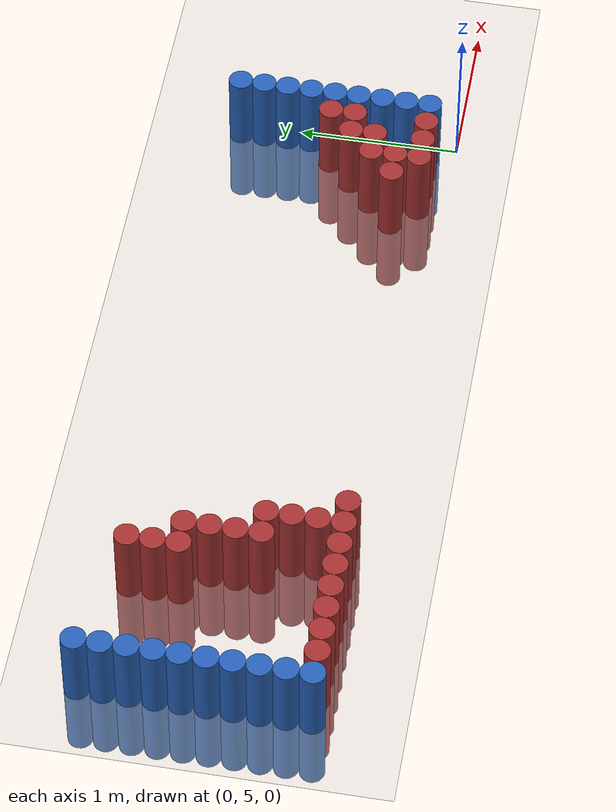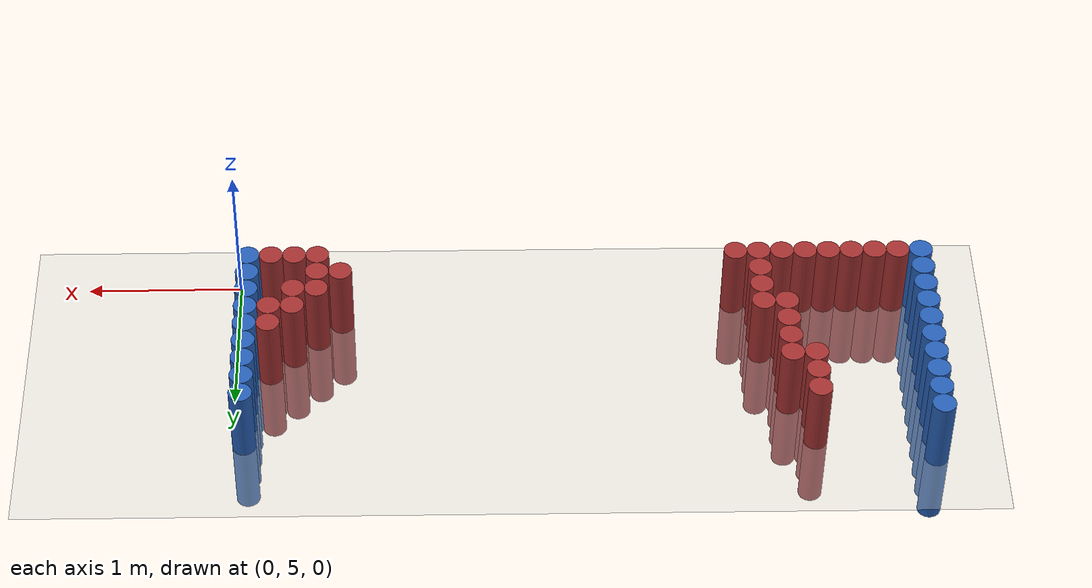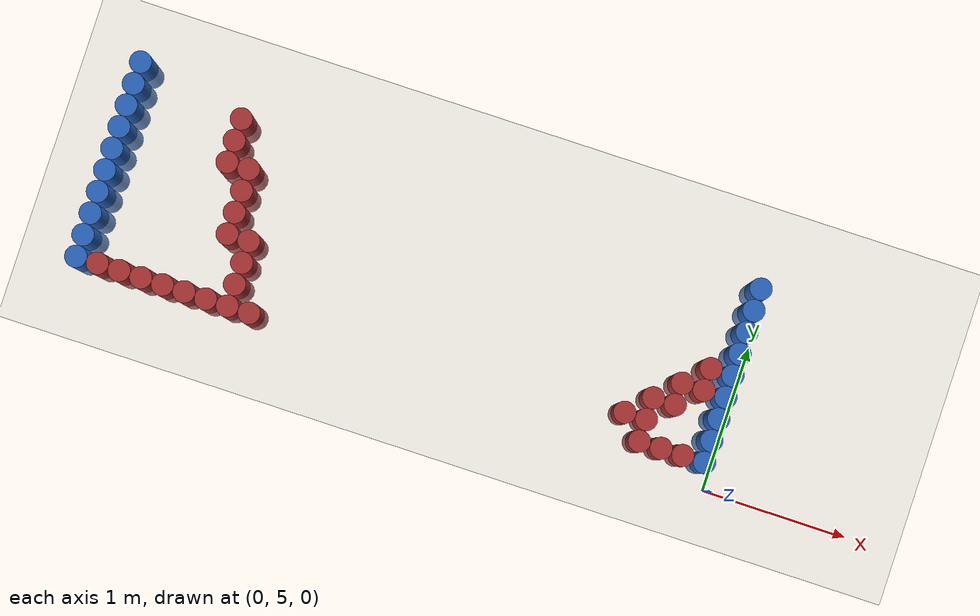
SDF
<sdf version="1.6">
 <world name="default">
  <model name="ground_plane">
   <static>1</static>
   <link name="link">
    <collision name="collision">
     <geometry><plane><normal>0 0 1</normal><size>100 100</size></plane></geometry>
     <surface><friction><ode><mu>100</mu><mu2>50</mu2></ode></friction></surface>
    </collision>
    <visual name="visual">
     <cast_shadows>0</cast_shadows>
     <geometry><plane><normal>0 0 1</normal><size>100 100</size></plane></geometry>
     <material>
      <script><uri>file://media/materials/scripts/gazebo.material</uri><name>Gazebo/Grey</name></script>
     </material>
    </visual>
   </link>
  </model>
  <model name="unit_cylinder_96">
   <static>1</static>
   <pose>-4.425000 5.175000 0.000000 0.000000 0.000000 0.000000</pose>
   <link name="link">
    <inertial>
     <mass>1</mass>
     <inertia><ixx>0.145833</ixx><ixy>0</ixy><ixz>0</ixz><iyy>0.145833</iyy><iyz>0</iyz><izz>0.125</izz></inertia>
    </inertial>
    <collision name="collision">
     <geometry><cylinder><radius>0.075000</radius><length>1</length></cylinder></geometry>
    </collision>
    <visual name="visual">
     <geometry><cylinder><radius>0.075000</radius><length>1</length></cylinder></geometry>
     <material>
      <ambient>0.152000 0.379000 0.720000 1</ambient>
      <diffuse>0.152000 0.379000 0.720000 1</diffuse>
     </material>
     <material>
      <script><name>Gazebo/Grey</name><uri>file://media/materials/scripts/gazebo.material</uri></script>
     </material>
    </visual>
   </link>
  </model>
  <model name="unit_cylinder_97">
   <static>1</static>
   <pose>-4.425000 5.325000 0.000000 0.000000 0.000000 0.000000</pose>
   <link name="link">
    <inertial>
     <mass>1</mass>
     <inertia><ixx>0.145833</ixx><ixy>0</ixy><ixz>0</ixz><iyy>0.145833</iyy><iyz>0</iyz><izz>0.125</izz></inertia>
    </inertial>
    <collision name="collision">
     <geometry><cylinder><radius>0.075000</radius><length>1</length></cylinder></geometry>
    </collision>
    <visual name="visual">
     <geometry><cylinder><radius>0.075000</radius><length>1</length></cylinder></geometry>
     <material>
      <ambient>0.152000 0.379000 0.720000 1</ambient>
      <diffuse>0.152000 0.379000 0.720000 1</diffuse>
     </material>
     <material>
      <script><name>Gazebo/Grey</name><uri>file://media/materials/scripts/gazebo.material</uri></script>
     </material>
    </visual>
   </link>
  </model>
  <model name="unit_cylinder_98">
   <static>1</static>
   <pose>-4.425000 5.475000 0.000000 0.000000 0.000000 0.000000</pose>
   <link name="link">
    <inertial>
     <mass>1</mass>
     <inertia><ixx>0.145833</ixx><ixy>0</ixy><ixz>0</ixz><iyy>0.145833</iyy><iyz>0</iyz><izz>0.125</izz></inertia>
    </inertial>
    <collision name="collision">
     <geometry><cylinder><radius>0.075000</radius><length>1</length></cylinder></geometry>
    </collision>
    <visual name="visual">
     <geometry><cylinder><radius>0.075000</radius><length>1</length></cylinder></geometry>
     <material>
      <ambient>0.152000 0.379000 0.720000 1</ambient>
      <diffuse>0.152000 0.379000 0.720000 1</diffuse>
     </material>
     <material>
      <script><name>Gazebo/Grey</name><uri>file://media/materials/scripts/gazebo.material</uri></script>
     </material>
    </visual>
   </link>
  </model>
  <model name="unit_cylinder_99">
   <static>1</static>
   <pose>-4.425000 5.625000 0.000000 0.000000 0.000000 0.000000</pose>
   <link name="link">
    <inertial>
     <mass>1</mass>
     <inertia><ixx>0.145833</ixx><ixy>0</ixy><ixz>0</ixz><iyy>0.145833</iyy><iyz>0</iyz><izz>0.125</izz></inertia>
    </inertial>
    <collision name="collision">
     <geometry><cylinder><radius>0.075000</radius><length>1</length></cylinder></geometry>
    </collision>
    <visual name="visual">
     <geometry><cylinder><radius>0.075000</radius><length>1</length></cylinder></geometry>
     <material>
      <ambient>0.152000 0.379000 0.720000 1</ambient>
      <diffuse>0.152000 0.379000 0.720000 1</diffuse>
     </material>
     <material>
      <script><name>Gazebo/Grey</name><uri>file://media/materials/scripts/gazebo.material</uri></script>
     </material>
    </visual>
   </link>
  </model>
  <model name="unit_cylinder_100">
   <static>1</static>
   <pose>-4.425000 5.775000 0.000000 0.000000 0.000000 0.000000</pose>
   <link name="link">
    <inertial>
     <mass>1</mass>
     <inertia><ixx>0.145833</ixx><ixy>0</ixy><ixz>0</ixz><iyy>0.145833</iyy><iyz>0</iyz><izz>0.125</izz></inertia>
    </inertial>
    <collision name="collision">
     <geometry><cylinder><radius>0.075000</radius><length>1</length></cylinder></geometry>
    </collision>
    <visual name="visual">
     <geometry><cylinder><radius>0.075000</radius><length>1</length></cylinder></geometry>
     <material>
      <ambient>0.152000 0.379000 0.720000 1</ambient>
      <diffuse>0.152000 0.379000 0.720000 1</diffuse>
     </material>
     <material>
      <script><name>Gazebo/Grey</name><uri>file://media/materials/scripts/gazebo.material</uri></script>
     </material>
    </visual>
   </link>
  </model>
  <model name="unit_cylinder_101">
   <static>1</static>
   <pose>-4.425000 5.925000 0.000000 0.000000 0.000000 0.000000</pose>
   <link name="link">
    <inertial>
     <mass>1</mass>
     <inertia><ixx>0.145833</ixx><ixy>0</ixy><ixz>0</ixz><iyy>0.145833</iyy><iyz>0</iyz><izz>0.125</izz></inertia>
    </inertial>
    <collision name="collision">
     <geometry><cylinder><radius>0.075000</radius><length>1</length></cylinder></geometry>
    </collision>
    <visual name="visual">
     <geometry><cylinder><radius>0.075000</radius><length>1</length></cylinder></geometry>
     <material>
      <ambient>0.152000 0.379000 0.720000 1</ambient>
      <diffuse>0.152000 0.379000 0.720000 1</diffuse>
     </material>
     <material>
      <script><name>Gazebo/Grey</name><uri>file://media/materials/scripts/gazebo.material</uri></script>
     </material>
    </visual>
   </link>
  </model>
  <model name="unit_cylinder_102">
   <static>1</static>
   <pose>-4.425000 6.075000 0.000000 0.000000 0.000000 0.000000</pose>
   <link name="link">
    <inertial>
     <mass>1</mass>
     <inertia><ixx>0.145833</ixx><ixy>0</ixy><ixz>0</ixz><iyy>0.145833</iyy><iyz>0</iyz><izz>0.125</izz></inertia>
    </inertial>
    <collision name="collision">
     <geometry><cylinder><radius>0.075000</radius><length>1</length></cylinder></geometry>
    </collision>
    <visual name="visual">
     <geometry><cylinder><radius>0.075000</radius><length>1</length></cylinder></geometry>
     <material>
      <ambient>0.152000 0.379000 0.720000 1</ambient>
      <diffuse>0.152000 0.379000 0.720000 1</diffuse>
     </material>
     <material>
      <script><name>Gazebo/Grey</name><uri>file://media/materials/scripts/gazebo.material</uri></script>
     </material>
    </visual>
   </link>
  </model>
  <model name="unit_cylinder_103">
   <static>1</static>
   <pose>-4.425000 6.225000 0.000000 0.000000 0.000000 0.000000</pose>
   <link name="link">
    <inertial>
     <mass>1</mass>
     <inertia><ixx>0.145833</ixx><ixy>0</ixy><ixz>0</ixz><iyy>0.145833</iyy><iyz>0</iyz><izz>0.125</izz></inertia>
    </inertial>
    <collision name="collision">
     <geometry><cylinder><radius>0.075000</radius><length>1</length></cylinder></geometry>
    </collision>
    <visual name="visual">
     <geometry><cylinder><radius>0.075000</radius><length>1</length></cylinder></geometry>
     <material>
      <ambient>0.152000 0.379000 0.720000 1</ambient>
      <diffuse>0.152000 0.379000 0.720000 1</diffuse>
     </material>
     <material>
      <script><name>Gazebo/Grey</name><uri>file://media/materials/scripts/gazebo.material</uri></script>
     </material>
    </visual>
   </link>
  </model>
  <model name="unit_cylinder_104">
   <static>1</static>
   <pose>-4.425000 6.375000 0.000000 0.000000 0.000000 0.000000</pose>
   <link name="link">
    <inertial>
     <mass>1</mass>
     <inertia><ixx>0.145833</ixx><ixy>0</ixy><ixz>0</ixz><iyy>0.145833</iyy><iyz>0</iyz><izz>0.125</izz></inertia>
    </inertial>
    <collision name="collision">
     <geometry><cylinder><radius>0.075000</radius><length>1</length></cylinder></geometry>
    </collision>
    <visual name="visual">
     <geometry><cylinder><radius>0.075000</radius><length>1</length></cylinder></geometry>
     <material>
      <ambient>0.152000 0.379000 0.720000 1</ambient>
      <diffuse>0.152000 0.379000 0.720000 1</diffuse>
     </material>
     <material>
      <script><name>Gazebo/Grey</name><uri>file://media/materials/scripts/gazebo.material</uri></script>
     </material>
    </visual>
   </link>
  </model>
  <model name="unit_cylinder_105">
   <static>1</static>
   <pose>-4.425000 6.525000 0.000000 0.000000 0.000000 0.000000</pose>
   <link name="link">
    <inertial>
     <mass>1</mass>
     <inertia><ixx>0.145833</ixx><ixy>0</ixy><ixz>0</ixz><iyy>0.145833</iyy><iyz>0</iyz><izz>0.125</izz></inertia>
    </inertial>
    <collision name="collision">
     <geometry><cylinder><radius>0.075000</radius><length>1</length></cylinder></geometry>
    </collision>
    <visual name="visual">
     <geometry><cylinder><radius>0.075000</radius><length>1</length></cylinder></geometry>
     <material>
      <ambient>0.152000 0.379000 0.720000 1</ambient>
      <diffuse>0.152000 0.379000 0.720000 1</diffuse>
     </material>
     <material>
      <script><name>Gazebo/Grey</name><uri>file://media/materials/scripts/gazebo.material</uri></script>
     </material>
    </visual>
   </link>
  </model>
  <model name="unit_cylinder_126">
   <static>1</static>
   <pose>-4.275000 5.175000 0.000000 0.000000 0.000000 0.000000</pose>
   <link name="link">
    <inertial>
     <mass>1</mass>
     <inertia><ixx>0.145833</ixx><ixy>0</ixy><ixz>0</ixz><iyy>0.145833</iyy><iyz>0</iyz><izz>0.125</izz></inertia>
    </inertial>
    <collision name="collision">
     <geometry><cylinder><radius>0.075000</radius><length>1</length></cylinder></geometry>
    </collision>
    <visual name="visual">
     <geometry><cylinder><radius>0.075000</radius><length>1</length></cylinder></geometry>
     <material>
      <ambient>0.648000 0.192000 0.192000 1</ambient>
      <diffuse>0.648000 0.192000 0.192000 1</diffuse>
     </material>
     <material>
      <script><name>Gazebo/Grey</name><uri>file://media/materials/scripts/gazebo.material</uri></script>
     </material>
    </visual>
   </link>
  </model>
  <model name="unit_cylinder_128">
   <static>1</static>
   <pose>-4.125000 5.175000 0.000000 0.000000 0.000000 0.000000</pose>
   <link name="link">
    <inertial>
     <mass>1</mass>
     <inertia><ixx>0.145833</ixx><ixy>0</ixy><ixz>0</ixz><iyy>0.145833</iyy><iyz>0</iyz><izz>0.125</izz></inertia>
    </inertial>
    <collision name="collision">
     <geometry><cylinder><radius>0.075000</radius><length>1</length></cylinder></geometry>
    </collision>
    <visual name="visual">
     <geometry><cylinder><radius>0.075000</radius><length>1</length></cylinder></geometry>
     <material>
      <ambient>0.648000 0.192000 0.192000 1</ambient>
      <diffuse>0.648000 0.192000 0.192000 1</diffuse>
     </material>
     <material>
      <script><name>Gazebo/Grey</name><uri>file://media/materials/scripts/gazebo.material</uri></script>
     </material>
    </visual>
   </link>
  </model>
  <model name="unit_cylinder_133">
   <static>1</static>
   <pose>-3.975000 5.175000 0.000000 0.000000 0.000000 0.000000</pose>
   <link name="link">
    <inertial>
     <mass>1</mass>
     <inertia><ixx>0.145833</ixx><ixy>0</ixy><ixz>0</ixz><iyy>0.145833</iyy><iyz>0</iyz><izz>0.125</izz></inertia>
    </inertial>
    <collision name="collision">
     <geometry><cylinder><radius>0.075000</radius><length>1</length></cylinder></geometry>
    </collision>
    <visual name="visual">
     <geometry><cylinder><radius>0.075000</radius><length>1</length></cylinder></geometry>
     <material>
      <ambient>0.648000 0.192000 0.192000 1</ambient>
      <diffuse>0.648000 0.192000 0.192000 1</diffuse>
     </material>
     <material>
      <script><name>Gazebo/Grey</name><uri>file://media/materials/scripts/gazebo.material</uri></script>
     </material>
    </visual>
   </link>
  </model>
  <model name="unit_cylinder_145">
   <static>1</static>
   <pose>-3.825000 5.175000 0.000000 0.000000 0.000000 0.000000</pose>
   <link name="link">
    <inertial>
     <mass>1</mass>
     <inertia><ixx>0.145833</ixx><ixy>0</ixy><ixz>0</ixz><iyy>0.145833</iyy><iyz>0</iyz><izz>0.125</izz></inertia>
    </inertial>
    <collision name="collision">
     <geometry><cylinder><radius>0.075000</radius><length>1</length></cylinder></geometry>
    </collision>
    <visual name="visual">
     <geometry><cylinder><radius>0.075000</radius><length>1</length></cylinder></geometry>
     <material>
      <ambient>0.648000 0.192000 0.192000 1</ambient>
      <diffuse>0.648000 0.192000 0.192000 1</diffuse>
     </material>
     <material>
      <script><name>Gazebo/Grey</name><uri>file://media/materials/scripts/gazebo.material</uri></script>
     </material>
    </visual>
   </link>
  </model>
  <model name="unit_cylinder_154">
   <static>1</static>
   <pose>-3.675000 5.175000 0.000000 0.000000 0.000000 0.000000</pose>
   <link name="link">
    <inertial>
     <mass>1</mass>
     <inertia><ixx>0.145833</ixx><ixy>0</ixy><ixz>0</ixz><iyy>0.145833</iyy><iyz>0</iyz><izz>0.125</izz></inertia>
    </inertial>
    <collision name="collision">
     <geometry><cylinder><radius>0.075000</radius><length>1</length></cylinder></geometry>
    </collision>
    <visual name="visual">
     <geometry><cylinder><radius>0.075000</radius><length>1</length></cylinder></geometry>
     <material>
      <ambient>0.648000 0.192000 0.192000 1</ambient>
      <diffuse>0.648000 0.192000 0.192000 1</diffuse>
     </material>
     <material>
      <script><name>Gazebo/Grey</name><uri>file://media/materials/scripts/gazebo.material</uri></script>
     </material>
    </visual>
   </link>
  </model>
  <model name="unit_cylinder_155">
   <static>1</static>
   <pose>-3.675000 6.075000 0.000000 0.000000 0.000000 0.000000</pose>
   <link name="link">
    <inertial>
     <mass>1</mass>
     <inertia><ixx>0.145833</ixx><ixy>0</ixy><ixz>0</ixz><iyy>0.145833</iyy><iyz>0</iyz><izz>0.125</izz></inertia>
    </inertial>
    <collision name="collision">
     <geometry><cylinder><radius>0.075000</radius><length>1</length></cylinder></geometry>
    </collision>
    <visual name="visual">
     <geometry><cylinder><radius>0.075000</radius><length>1</length></cylinder></geometry>
     <material>
      <ambient>0.648000 0.192000 0.192000 1</ambient>
      <diffuse>0.648000 0.192000 0.192000 1</diffuse>
     </material>
     <material>
      <script><name>Gazebo/Grey</name><uri>file://media/materials/scripts/gazebo.material</uri></script>
     </material>
    </visual>
   </link>
  </model>
  <model name="unit_cylinder_156">
   <static>1</static>
   <pose>-3.675000 6.225000 0.000000 0.000000 0.000000 0.000000</pose>
   <link name="link">
    <inertial>
     <mass>1</mass>
     <inertia><ixx>0.145833</ixx><ixy>0</ixy><ixz>0</ixz><iyy>0.145833</iyy><iyz>0</iyz><izz>0.125</izz></inertia>
    </inertial>
    <collision name="collision">
     <geometry><cylinder><radius>0.075000</radius><length>1</length></cylinder></geometry>
    </collision>
    <visual name="visual">
     <geometry><cylinder><radius>0.075000</radius><length>1</length></cylinder></geometry>
     <material>
      <ambient>0.648000 0.192000 0.192000 1</ambient>
      <diffuse>0.648000 0.192000 0.192000 1</diffuse>
     </material>
     <material>
      <script><name>Gazebo/Grey</name><uri>file://media/materials/scripts/gazebo.material</uri></script>
     </material>
    </visual>
   </link>
  </model>
  <model name="unit_cylinder_157">
   <static>1</static>
   <pose>-3.675000 6.375000 0.000000 0.000000 0.000000 0.000000</pose>
   <link name="link">
    <inertial>
     <mass>1</mass>
     <inertia><ixx>0.145833</ixx><ixy>0</ixy><ixz>0</ixz><iyy>0.145833</iyy><iyz>0</iyz><izz>0.125</izz></inertia>
    </inertial>
    <collision name="collision">
     <geometry><cylinder><radius>0.075000</radius><length>1</length></cylinder></geometry>
    </collision>
    <visual name="visual">
     <geometry><cylinder><radius>0.075000</radius><length>1</length></cylinder></geometry>
     <material>
      <ambient>0.648000 0.192000 0.192000 1</ambient>
      <diffuse>0.648000 0.192000 0.192000 1</diffuse>
     </material>
     <material>
      <script><name>Gazebo/Grey</name><uri>file://media/materials/scripts/gazebo.material</uri></script>
     </material>
    </visual>
   </link>
  </model>
  <model name="unit_cylinder_164">
   <static>1</static>
   <pose>-3.525000 5.175000 0.000000 0.000000 0.000000 0.000000</pose>
   <link name="link">
    <inertial>
     <mass>1</mass>
     <inertia><ixx>0.145833</ixx><ixy>0</ixy><ixz>0</ixz><iyy>0.145833</iyy><iyz>0</iyz><izz>0.125</izz></inertia>
    </inertial>
    <collision name="collision">
     <geometry><cylinder><radius>0.075000</radius><length>1</length></cylinder></geometry>
    </collision>
    <visual name="visual">
     <geometry><cylinder><radius>0.075000</radius><length>1</length></cylinder></geometry>
     <material>
      <ambient>0.648000 0.192000 0.192000 1</ambient>
      <diffuse>0.648000 0.192000 0.192000 1</diffuse>
     </material>
     <material>
      <script><name>Gazebo/Grey</name><uri>file://media/materials/scripts/gazebo.material</uri></script>
     </material>
    </visual>
   </link>
  </model>
  <model name="unit_cylinder_165">
   <static>1</static>
   <pose>-3.525000 5.625000 0.000000 0.000000 0.000000 0.000000</pose>
   <link name="link">
    <inertial>
     <mass>1</mass>
     <inertia><ixx>0.145833</ixx><ixy>0</ixy><ixz>0</ixz><iyy>0.145833</iyy><iyz>0</iyz><izz>0.125</izz></inertia>
    </inertial>
    <collision name="collision">
     <geometry><cylinder><radius>0.075000</radius><length>1</length></cylinder></geometry>
    </collision>
    <visual name="visual">
     <geometry><cylinder><radius>0.075000</radius><length>1</length></cylinder></geometry>
     <material>
      <ambient>0.648000 0.192000 0.192000 1</ambient>
      <diffuse>0.648000 0.192000 0.192000 1</diffuse>
     </material>
     <material>
      <script><name>Gazebo/Grey</name><uri>file://media/materials/scripts/gazebo.material</uri></script>
     </material>
    </visual>
   </link>
  </model>
  <model name="unit_cylinder_166">
   <static>1</static>
   <pose>-3.525000 5.775000 0.000000 0.000000 0.000000 0.000000</pose>
   <link name="link">
    <inertial>
     <mass>1</mass>
     <inertia><ixx>0.145833</ixx><ixy>0</ixy><ixz>0</ixz><iyy>0.145833</iyy><iyz>0</iyz><izz>0.125</izz></inertia>
    </inertial>
    <collision name="collision">
     <geometry><cylinder><radius>0.075000</radius><length>1</length></cylinder></geometry>
    </collision>
    <visual name="visual">
     <geometry><cylinder><radius>0.075000</radius><length>1</length></cylinder></geometry>
     <material>
      <ambient>0.648000 0.192000 0.192000 1</ambient>
      <diffuse>0.648000 0.192000 0.192000 1</diffuse>
     </material>
     <material>
      <script><name>Gazebo/Grey</name><uri>file://media/materials/scripts/gazebo.material</uri></script>
     </material>
    </visual>
   </link>
  </model>
  <model name="unit_cylinder_167">
   <static>1</static>
   <pose>-3.525000 5.925000 0.000000 0.000000 0.000000 0.000000</pose>
   <link name="link">
    <inertial>
     <mass>1</mass>
     <inertia><ixx>0.145833</ixx><ixy>0</ixy><ixz>0</ixz><iyy>0.145833</iyy><iyz>0</iyz><izz>0.125</izz></inertia>
    </inertial>
    <collision name="collision">
     <geometry><cylinder><radius>0.075000</radius><length>1</length></cylinder></geometry>
    </collision>
    <visual name="visual">
     <geometry><cylinder><radius>0.075000</radius><length>1</length></cylinder></geometry>
     <material>
      <ambient>0.648000 0.192000 0.192000 1</ambient>
      <diffuse>0.648000 0.192000 0.192000 1</diffuse>
     </material>
     <material>
      <script><name>Gazebo/Grey</name><uri>file://media/materials/scripts/gazebo.material</uri></script>
     </material>
    </visual>
   </link>
  </model>
  <model name="unit_cylinder_168">
   <static>1</static>
   <pose>-3.525000 6.075000 0.000000 0.000000 0.000000 0.000000</pose>
   <link name="link">
    <inertial>
     <mass>1</mass>
     <inertia><ixx>0.145833</ixx><ixy>0</ixy><ixz>0</ixz><iyy>0.145833</iyy><iyz>0</iyz><izz>0.125</izz></inertia>
    </inertial>
    <collision name="collision">
     <geometry><cylinder><radius>0.075000</radius><length>1</length></cylinder></geometry>
    </collision>
    <visual name="visual">
     <geometry><cylinder><radius>0.075000</radius><length>1</length></cylinder></geometry>
     <material>
      <ambient>0.648000 0.192000 0.192000 1</ambient>
      <diffuse>0.648000 0.192000 0.192000 1</diffuse>
     </material>
     <material>
      <script><name>Gazebo/Grey</name><uri>file://media/materials/scripts/gazebo.material</uri></script>
     </material>
    </visual>
   </link>
  </model>
  <model name="unit_cylinder_175">
   <static>1</static>
   <pose>-3.375000 5.175000 0.000000 0.000000 0.000000 0.000000</pose>
   <link name="link">
    <inertial>
     <mass>1</mass>
     <inertia><ixx>0.145833</ixx><ixy>0</ixy><ixz>0</ixz><iyy>0.145833</iyy><iyz>0</iyz><izz>0.125</izz></inertia>
    </inertial>
    <collision name="collision">
     <geometry><cylinder><radius>0.075000</radius><length>1</length></cylinder></geometry>
    </collision>
    <visual name="visual">
     <geometry><cylinder><radius>0.075000</radius><length>1</length></cylinder></geometry>
     <material>
      <ambient>0.648000 0.192000 0.192000 1</ambient>
      <diffuse>0.648000 0.192000 0.192000 1</diffuse>
     </material>
     <material>
      <script><name>Gazebo/Grey</name><uri>file://media/materials/scripts/gazebo.material</uri></script>
     </material>
    </visual>
   </link>
  </model>
  <model name="unit_cylinder_176">
   <static>1</static>
   <pose>-3.375000 5.325000 0.000000 0.000000 0.000000 0.000000</pose>
   <link name="link">
    <inertial>
     <mass>1</mass>
     <inertia><ixx>0.145833</ixx><ixy>0</ixy><ixz>0</ixz><iyy>0.145833</iyy><iyz>0</iyz><izz>0.125</izz></inertia>
    </inertial>
    <collision name="collision">
     <geometry><cylinder><radius>0.075000</radius><length>1</length></cylinder></geometry>
    </collision>
    <visual name="visual">
     <geometry><cylinder><radius>0.075000</radius><length>1</length></cylinder></geometry>
     <material>
      <ambient>0.648000 0.192000 0.192000 1</ambient>
      <diffuse>0.648000 0.192000 0.192000 1</diffuse>
     </material>
     <material>
      <script><name>Gazebo/Grey</name><uri>file://media/materials/scripts/gazebo.material</uri></script>
     </material>
    </visual>
   </link>
  </model>
  <model name="unit_cylinder_177">
   <static>1</static>
   <pose>-3.375000 5.475000 0.000000 0.000000 0.000000 0.000000</pose>
   <link name="link">
    <inertial>
     <mass>1</mass>
     <inertia><ixx>0.145833</ixx><ixy>0</ixy><ixz>0</ixz><iyy>0.145833</iyy><iyz>0</iyz><izz>0.125</izz></inertia>
    </inertial>
    <collision name="collision">
     <geometry><cylinder><radius>0.075000</radius><length>1</length></cylinder></geometry>
    </collision>
    <visual name="visual">
     <geometry><cylinder><radius>0.075000</radius><length>1</length></cylinder></geometry>
     <material>
      <ambient>0.648000 0.192000 0.192000 1</ambient>
      <diffuse>0.648000 0.192000 0.192000 1</diffuse>
     </material>
     <material>
      <script><name>Gazebo/Grey</name><uri>file://media/materials/scripts/gazebo.material</uri></script>
     </material>
    </visual>
   </link>
  </model>
  <model name="unit_cylinder_178">
   <static>1</static>
   <pose>-3.375000 5.625000 0.000000 0.000000 0.000000 0.000000</pose>
   <link name="link">
    <inertial>
     <mass>1</mass>
     <inertia><ixx>0.145833</ixx><ixy>0</ixy><ixz>0</ixz><iyy>0.145833</iyy><iyz>0</iyz><izz>0.125</izz></inertia>
    </inertial>
    <collision name="collision">
     <geometry><cylinder><radius>0.075000</radius><length>1</length></cylinder></geometry>
    </collision>
    <visual name="visual">
     <geometry><cylinder><radius>0.075000</radius><length>1</length></cylinder></geometry>
     <material>
      <ambient>0.648000 0.192000 0.192000 1</ambient>
      <diffuse>0.648000 0.192000 0.192000 1</diffuse>
     </material>
     <material>
      <script><name>Gazebo/Grey</name><uri>file://media/materials/scripts/gazebo.material</uri></script>
     </material>
    </visual>
   </link>
  </model>
  <model name="unit_cylinder_184">
   <static>1</static>
   <pose>-3.225000 5.175000 0.000000 0.000000 0.000000 0.000000</pose>
   <link name="link">
    <inertial>
     <mass>1</mass>
     <inertia><ixx>0.145833</ixx><ixy>0</ixy><ixz>0</ixz><iyy>0.145833</iyy><iyz>0</iyz><izz>0.125</izz></inertia>
    </inertial>
    <collision name="collision">
     <geometry><cylinder><radius>0.075000</radius><length>1</length></cylinder></geometry>
    </collision>
    <visual name="visual">
     <geometry><cylinder><radius>0.075000</radius><length>1</length></cylinder></geometry>
     <material>
      <ambient>0.648000 0.192000 0.192000 1</ambient>
      <diffuse>0.648000 0.192000 0.192000 1</diffuse>
     </material>
     <material>
      <script><name>Gazebo/Grey</name><uri>file://media/materials/scripts/gazebo.material</uri></script>
     </material>
    </visual>
   </link>
  </model>
  <model name="unit_cylinder_235">
   <static>1</static>
   <pose>-0.675000 5.325000 0.000000 0.000000 0.000000 0.000000</pose>
   <link name="link">
    <inertial>
     <mass>1</mass>
     <inertia><ixx>0.145833</ixx><ixy>0</ixy><ixz>0</ixz><iyy>0.145833</iyy><iyz>0</iyz><izz>0.125</izz></inertia>
    </inertial>
    <collision name="collision">
     <geometry><cylinder><radius>0.075000</radius><length>1</length></cylinder></geometry>
    </collision>
    <visual name="visual">
     <geometry><cylinder><radius>0.075000</radius><length>1</length></cylinder></geometry>
     <material>
      <ambient>0.648000 0.192000 0.192000 1</ambient>
      <diffuse>0.648000 0.192000 0.192000 1</diffuse>
     </material>
     <material>
      <script><name>Gazebo/Grey</name><uri>file://media/materials/scripts/gazebo.material</uri></script>
     </material>
    </visual>
   </link>
  </model>
  <model name="unit_cylinder_240">
   <static>1</static>
   <pose>-0.525000 5.175000 0.000000 0.000000 0.000000 0.000000</pose>
   <link name="link">
    <inertial>
     <mass>1</mass>
     <inertia><ixx>0.145833</ixx><ixy>0</ixy><ixz>0</ixz><iyy>0.145833</iyy><iyz>0</iyz><izz>0.125</izz></inertia>
    </inertial>
    <collision name="collision">
     <geometry><cylinder><radius>0.075000</radius><length>1</length></cylinder></geometry>
    </collision>
    <visual name="visual">
     <geometry><cylinder><radius>0.075000</radius><length>1</length></cylinder></geometry>
     <material>
      <ambient>0.648000 0.192000 0.192000 1</ambient>
      <diffuse>0.648000 0.192000 0.192000 1</diffuse>
     </material>
     <material>
      <script><name>Gazebo/Grey</name><uri>file://media/materials/scripts/gazebo.material</uri></script>
     </material>
    </visual>
   </link>
  </model>
  <model name="unit_cylinder_241">
   <static>1</static>
   <pose>-0.525000 5.325000 0.000000 0.000000 0.000000 0.000000</pose>
   <link name="link">
    <inertial>
     <mass>1</mass>
     <inertia><ixx>0.145833</ixx><ixy>0</ixy><ixz>0</ixz><iyy>0.145833</iyy><iyz>0</iyz><izz>0.125</izz></inertia>
    </inertial>
    <collision name="collision">
     <geometry><cylinder><radius>0.075000</radius><length>1</length></cylinder></geometry>
    </collision>
    <visual name="visual">
     <geometry><cylinder><radius>0.075000</radius><length>1</length></cylinder></geometry>
     <material>
      <ambient>0.648000 0.192000 0.192000 1</ambient>
      <diffuse>0.648000 0.192000 0.192000 1</diffuse>
     </material>
     <material>
      <script><name>Gazebo/Grey</name><uri>file://media/materials/scripts/gazebo.material</uri></script>
     </material>
    </visual>
   </link>
  </model>
  <model name="unit_cylinder_242">
   <static>1</static>
   <pose>-0.525000 5.475000 0.000000 0.000000 0.000000 0.000000</pose>
   <link name="link">
    <inertial>
     <mass>1</mass>
     <inertia><ixx>0.145833</ixx><ixy>0</ixy><ixz>0</ixz><iyy>0.145833</iyy><iyz>0</iyz><izz>0.125</izz></inertia>
    </inertial>
    <collision name="collision">
     <geometry><cylinder><radius>0.075000</radius><length>1</length></cylinder></geometry>
    </collision>
    <visual name="visual">
     <geometry><cylinder><radius>0.075000</radius><length>1</length></cylinder></geometry>
     <material>
      <ambient>0.648000 0.192000 0.192000 1</ambient>
      <diffuse>0.648000 0.192000 0.192000 1</diffuse>
     </material>
     <material>
      <script><name>Gazebo/Grey</name><uri>file://media/materials/scripts/gazebo.material</uri></script>
     </material>
    </visual>
   </link>
  </model>
  <model name="unit_cylinder_245">
   <static>1</static>
   <pose>-0.375000 5.175000 0.000000 0.000000 0.000000 0.000000</pose>
   <link name="link">
    <inertial>
     <mass>1</mass>
     <inertia><ixx>0.145833</ixx><ixy>0</ixy><ixz>0</ixz><iyy>0.145833</iyy><iyz>0</iyz><izz>0.125</izz></inertia>
    </inertial>
    <collision name="collision">
     <geometry><cylinder><radius>0.075000</radius><length>1</length></cylinder></geometry>
    </collision>
    <visual name="visual">
     <geometry><cylinder><radius>0.075000</radius><length>1</length></cylinder></geometry>
     <material>
      <ambient>0.648000 0.192000 0.192000 1</ambient>
      <diffuse>0.648000 0.192000 0.192000 1</diffuse>
     </material>
     <material>
      <script><name>Gazebo/Grey</name><uri>file://media/materials/scripts/gazebo.material</uri></script>
     </material>
    </visual>
   </link>
  </model>
  <model name="unit_cylinder_246">
   <static>1</static>
   <pose>-0.375000 5.475000 0.000000 0.000000 0.000000 0.000000</pose>
   <link name="link">
    <inertial>
     <mass>1</mass>
     <inertia><ixx>0.145833</ixx><ixy>0</ixy><ixz>0</ixz><iyy>0.145833</iyy><iyz>0</iyz><izz>0.125</izz></inertia>
    </inertial>
    <collision name="collision">
     <geometry><cylinder><radius>0.075000</radius><length>1</length></cylinder></geometry>
    </collision>
    <visual name="visual">
     <geometry><cylinder><radius>0.075000</radius><length>1</length></cylinder></geometry>
     <material>
      <ambient>0.648000 0.192000 0.192000 1</ambient>
      <diffuse>0.648000 0.192000 0.192000 1</diffuse>
     </material>
     <material>
      <script><name>Gazebo/Grey</name><uri>file://media/materials/scripts/gazebo.material</uri></script>
     </material>
    </visual>
   </link>
  </model>
  <model name="unit_cylinder_247">
   <static>1</static>
   <pose>-0.375000 5.625000 0.000000 0.000000 0.000000 0.000000</pose>
   <link name="link">
    <inertial>
     <mass>1</mass>
     <inertia><ixx>0.145833</ixx><ixy>0</ixy><ixz>0</ixz><iyy>0.145833</iyy><iyz>0</iyz><izz>0.125</izz></inertia>
    </inertial>
    <collision name="collision">
     <geometry><cylinder><radius>0.075000</radius><length>1</length></cylinder></geometry>
    </collision>
    <visual name="visual">
     <geometry><cylinder><radius>0.075000</radius><length>1</length></cylinder></geometry>
     <material>
      <ambient>0.648000 0.192000 0.192000 1</ambient>
      <diffuse>0.648000 0.192000 0.192000 1</diffuse>
     </material>
     <material>
      <script><name>Gazebo/Grey</name><uri>file://media/materials/scripts/gazebo.material</uri></script>
     </material>
    </visual>
   </link>
  </model>
  <model name="unit_cylinder_251">
   <static>1</static>
   <pose>-0.225000 5.175000 0.000000 0.000000 0.000000 0.000000</pose>
   <link name="link">
    <inertial>
     <mass>1</mass>
     <inertia><ixx>0.145833</ixx><ixy>0</ixy><ixz>0</ixz><iyy>0.145833</iyy><iyz>0</iyz><izz>0.125</izz></inertia>
    </inertial>
    <collision name="collision">
     <geometry><cylinder><radius>0.075000</radius><length>1</length></cylinder></geometry>
    </collision>
    <visual name="visual">
     <geometry><cylinder><radius>0.075000</radius><length>1</length></cylinder></geometry>
     <material>
      <ambient>0.648000 0.192000 0.192000 1</ambient>
      <diffuse>0.648000 0.192000 0.192000 1</diffuse>
     </material>
     <material>
      <script><name>Gazebo/Grey</name><uri>file://media/materials/scripts/gazebo.material</uri></script>
     </material>
    </visual>
   </link>
  </model>
  <model name="unit_cylinder_252">
   <static>1</static>
   <pose>-0.225000 5.625000 0.000000 0.000000 0.000000 0.000000</pose>
   <link name="link">
    <inertial>
     <mass>1</mass>
     <inertia><ixx>0.145833</ixx><ixy>0</ixy><ixz>0</ixz><iyy>0.145833</iyy><iyz>0</iyz><izz>0.125</izz></inertia>
    </inertial>
    <collision name="collision">
     <geometry><cylinder><radius>0.075000</radius><length>1</length></cylinder></geometry>
    </collision>
    <visual name="visual">
     <geometry><cylinder><radius>0.075000</radius><length>1</length></cylinder></geometry>
     <material>
      <ambient>0.648000 0.192000 0.192000 1</ambient>
      <diffuse>0.648000 0.192000 0.192000 1</diffuse>
     </material>
     <material>
      <script><name>Gazebo/Grey</name><uri>file://media/materials/scripts/gazebo.material</uri></script>
     </material>
    </visual>
   </link>
  </model>
  <model name="unit_cylinder_253">
   <static>1</static>
   <pose>-0.225000 5.775000 0.000000 0.000000 0.000000 0.000000</pose>
   <link name="link">
    <inertial>
     <mass>1</mass>
     <inertia><ixx>0.145833</ixx><ixy>0</ixy><ixz>0</ixz><iyy>0.145833</iyy><iyz>0</iyz><izz>0.125</izz></inertia>
    </inertial>
    <collision name="collision">
     <geometry><cylinder><radius>0.075000</radius><length>1</length></cylinder></geometry>
    </collision>
    <visual name="visual">
     <geometry><cylinder><radius>0.075000</radius><length>1</length></cylinder></geometry>
     <material>
      <ambient>0.648000 0.192000 0.192000 1</ambient>
      <diffuse>0.648000 0.192000 0.192000 1</diffuse>
     </material>
     <material>
      <script><name>Gazebo/Grey</name><uri>file://media/materials/scripts/gazebo.material</uri></script>
     </material>
    </visual>
   </link>
  </model>
  <model name="unit_cylinder_256">
   <static>1</static>
   <pose>-0.075000 5.175000 0.000000 0.000000 0.000000 0.000000</pose>
   <link name="link">
    <inertial>
     <mass>1</mass>
     <inertia><ixx>0.145833</ixx><ixy>0</ixy><ixz>0</ixz><iyy>0.145833</iyy><iyz>0</iyz><izz>0.125</izz></inertia>
    </inertial>
    <collision name="collision">
     <geometry><cylinder><radius>0.075000</radius><length>1</length></cylinder></geometry>
    </collision>
    <visual name="visual">
     <geometry><cylinder><radius>0.075000</radius><length>1</length></cylinder></geometry>
     <material>
      <ambient>0.152000 0.379000 0.720000 1</ambient>
      <diffuse>0.152000 0.379000 0.720000 1</diffuse>
     </material>
     <material>
      <script><name>Gazebo/Grey</name><uri>file://media/materials/scripts/gazebo.material</uri></script>
     </material>
    </visual>
   </link>
  </model>
  <model name="unit_cylinder_257">
   <static>1</static>
   <pose>-0.075000 5.325000 0.000000 0.000000 0.000000 0.000000</pose>
   <link name="link">
    <inertial>
     <mass>1</mass>
     <inertia><ixx>0.145833</ixx><ixy>0</ixy><ixz>0</ixz><iyy>0.145833</iyy><iyz>0</iyz><izz>0.125</izz></inertia>
    </inertial>
    <collision name="collision">
     <geometry><cylinder><radius>0.075000</radius><length>1</length></cylinder></geometry>
    </collision>
    <visual name="visual">
     <geometry><cylinder><radius>0.075000</radius><length>1</length></cylinder></geometry>
     <material>
      <ambient>0.152000 0.379000 0.720000 1</ambient>
      <diffuse>0.152000 0.379000 0.720000 1</diffuse>
     </material>
     <material>
      <script><name>Gazebo/Grey</name><uri>file://media/materials/scripts/gazebo.material</uri></script>
     </material>
    </visual>
   </link>
  </model>
  <model name="unit_cylinder_258">
   <static>1</static>
   <pose>-0.075000 5.475000 0.000000 0.000000 0.000000 0.000000</pose>
   <link name="link">
    <inertial>
     <mass>1</mass>
     <inertia><ixx>0.145833</ixx><ixy>0</ixy><ixz>0</ixz><iyy>0.145833</iyy><iyz>0</iyz><izz>0.125</izz></inertia>
    </inertial>
    <collision name="collision">
     <geometry><cylinder><radius>0.075000</radius><length>1</length></cylinder></geometry>
    </collision>
    <visual name="visual">
     <geometry><cylinder><radius>0.075000</radius><length>1</length></cylinder></geometry>
     <material>
      <ambient>0.152000 0.379000 0.720000 1</ambient>
      <diffuse>0.152000 0.379000 0.720000 1</diffuse>
     </material>
     <material>
      <script><name>Gazebo/Grey</name><uri>file://media/materials/scripts/gazebo.material</uri></script>
     </material>
    </visual>
   </link>
  </model>
  <model name="unit_cylinder_259">
   <static>1</static>
   <pose>-0.075000 5.625000 0.000000 0.000000 0.000000 0.000000</pose>
   <link name="link">
    <inertial>
     <mass>1</mass>
     <inertia><ixx>0.145833</ixx><ixy>0</ixy><ixz>0</ixz><iyy>0.145833</iyy><iyz>0</iyz><izz>0.125</izz></inertia>
    </inertial>
    <collision name="collision">
     <geometry><cylinder><radius>0.075000</radius><length>1</length></cylinder></geometry>
    </collision>
    <visual name="visual">
     <geometry><cylinder><radius>0.075000</radius><length>1</length></cylinder></geometry>
     <material>
      <ambient>0.152000 0.379000 0.720000 1</ambient>
      <diffuse>0.152000 0.379000 0.720000 1</diffuse>
     </material>
     <material>
      <script><name>Gazebo/Grey</name><uri>file://media/materials/scripts/gazebo.material</uri></script>
     </material>
    </visual>
   </link>
  </model>
  <model name="unit_cylinder_260">
   <static>1</static>
   <pose>-0.075000 5.775000 0.000000 0.000000 0.000000 0.000000</pose>
   <link name="link">
    <inertial>
     <mass>1</mass>
     <inertia><ixx>0.145833</ixx><ixy>0</ixy><ixz>0</ixz><iyy>0.145833</iyy><iyz>0</iyz><izz>0.125</izz></inertia>
    </inertial>
    <collision name="collision">
     <geometry><cylinder><radius>0.075000</radius><length>1</length></cylinder></geometry>
    </collision>
    <visual name="visual">
     <geometry><cylinder><radius>0.075000</radius><length>1</length></cylinder></geometry>
     <material>
      <ambient>0.152000 0.379000 0.720000 1</ambient>
      <diffuse>0.152000 0.379000 0.720000 1</diffuse>
     </material>
     <material>
      <script><name>Gazebo/Grey</name><uri>file://media/materials/scripts/gazebo.material</uri></script>
     </material>
    </visual>
   </link>
  </model>
  <model name="unit_cylinder_261">
   <static>1</static>
   <pose>-0.075000 5.925000 0.000000 0.000000 0.000000 0.000000</pose>
   <link name="link">
    <inertial>
     <mass>1</mass>
     <inertia><ixx>0.145833</ixx><ixy>0</ixy><ixz>0</ixz><iyy>0.145833</iyy><iyz>0</iyz><izz>0.125</izz></inertia>
    </inertial>
    <collision name="collision">
     <geometry><cylinder><radius>0.075000</radius><length>1</length></cylinder></geometry>
    </collision>
    <visual name="visual">
     <geometry><cylinder><radius>0.075000</radius><length>1</length></cylinder></geometry>
     <material>
      <ambient>0.152000 0.379000 0.720000 1</ambient>
      <diffuse>0.152000 0.379000 0.720000 1</diffuse>
     </material>
     <material>
      <script><name>Gazebo/Grey</name><uri>file://media/materials/scripts/gazebo.material</uri></script>
     </material>
    </visual>
   </link>
  </model>
  <model name="unit_cylinder_262">
   <static>1</static>
   <pose>-0.075000 6.075000 0.000000 0.000000 0.000000 0.000000</pose>
   <link name="link">
    <inertial>
     <mass>1</mass>
     <inertia><ixx>0.145833</ixx><ixy>0</ixy><ixz>0</ixz><iyy>0.145833</iyy><iyz>0</iyz><izz>0.125</izz></inertia>
    </inertial>
    <collision name="collision">
     <geometry><cylinder><radius>0.075000</radius><length>1</length></cylinder></geometry>
    </collision>
    <visual name="visual">
     <geometry><cylinder><radius>0.075000</radius><length>1</length></cylinder></geometry>
     <material>
      <ambient>0.152000 0.379000 0.720000 1</ambient>
      <diffuse>0.152000 0.379000 0.720000 1</diffuse>
     </material>
     <material>
      <script><name>Gazebo/Grey</name><uri>file://media/materials/scripts/gazebo.material</uri></script>
     </material>
    </visual>
   </link>
  </model>
  <model name="unit_cylinder_263">
   <static>1</static>
   <pose>-0.075000 6.225000 0.000000 0.000000 0.000000 0.000000</pose>
   <link name="link">
    <inertial>
     <mass>1</mass>
     <inertia><ixx>0.145833</ixx><ixy>0</ixy><ixz>0</ixz><iyy>0.145833</iyy><iyz>0</iyz><izz>0.125</izz></inertia>
    </inertial>
    <collision name="collision">
     <geometry><cylinder><radius>0.075000</radius><length>1</length></cylinder></geometry>
    </collision>
    <visual name="visual">
     <geometry><cylinder><radius>0.075000</radius><length>1</length></cylinder></geometry>
     <material>
      <ambient>0.152000 0.379000 0.720000 1</ambient>
      <diffuse>0.152000 0.379000 0.720000 1</diffuse>
     </material>
     <material>
      <script><name>Gazebo/Grey</name><uri>file://media/materials/scripts/gazebo.material</uri></script>
     </material>
    </visual>
   </link>
  </model>
  <model name="unit_cylinder_264">
   <static>1</static>
   <pose>-0.075000 6.375000 0.000000 0.000000 0.000000 0.000000</pose>
   <link name="link">
    <inertial>
     <mass>1</mass>
     <inertia><ixx>0.145833</ixx><ixy>0</ixy><ixz>0</ixz><iyy>0.145833</iyy><iyz>0</iyz><izz>0.125</izz></inertia>
    </inertial>
    <collision name="collision">
     <geometry><cylinder><radius>0.075000</radius><length>1</length></cylinder></geometry>
    </collision>
    <visual name="visual">
     <geometry><cylinder><radius>0.075000</radius><length>1</length></cylinder></geometry>
     <material>
      <ambient>0.152000 0.379000 0.720000 1</ambient>
      <diffuse>0.152000 0.379000 0.720000 1</diffuse>
     </material>
     <material>
      <script><name>Gazebo/Grey</name><uri>file://media/materials/scripts/gazebo.material</uri></script>
     </material>
    </visual>
   </link>
  </model>
 </world>
</sdf>
